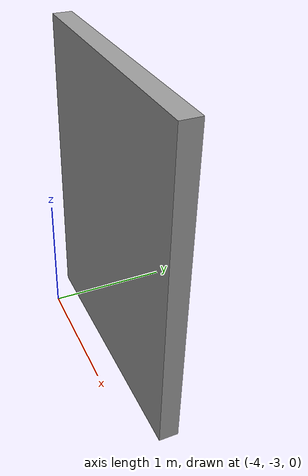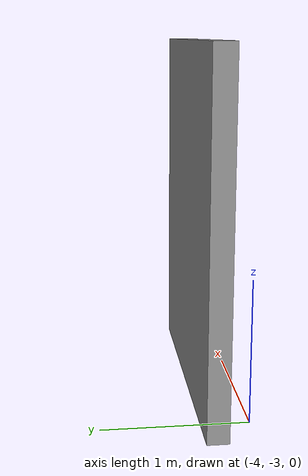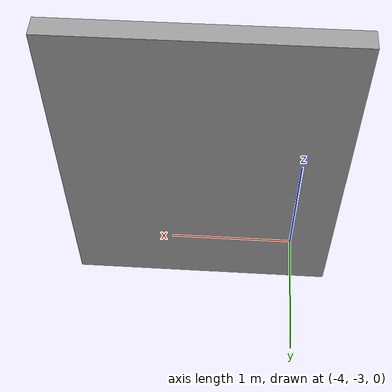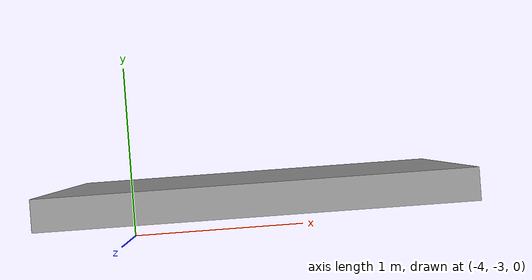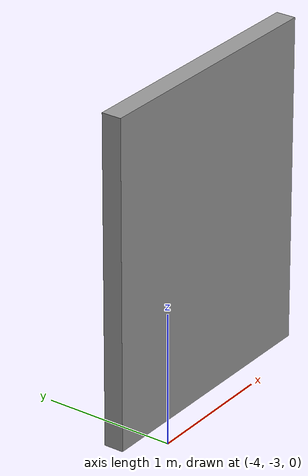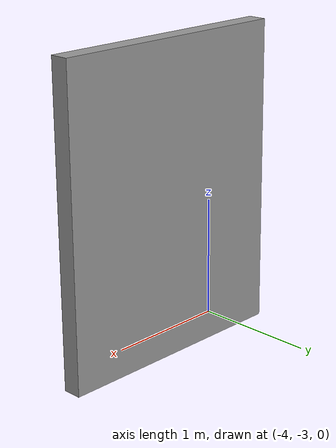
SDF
<?xml version='1.0'?>
<sdf version='1.6'>
  <model name='test'>
    <pose frame=''>-3.265 -2.74 0 0 -0 0</pose>
    <link name='Wall_0'>
      <collision name='Wall_0_Collision'>
        <geometry>
          <box>
            <size>2 0.15 2.5</size>
          </box>
        </geometry>
        <pose frame=''>0 0 1.25 0 -0 0</pose>
      </collision>
      <visual name='Wall_0_Visual'>
        <pose frame=''>0 0 1.25 0 -0 0</pose>
        <geometry>
          <box>
            <size>2 0.15 2.5</size>
          </box>
        </geometry>
        <material>
          <script>
            <uri>file://media/materials/scripts/gazebo.material</uri>
            <name>Gazebo/Grey</name>
          </script>
          <ambient>1 1 1 1</ambient>
        </material>
      </visual>
      <pose frame=''>0 0 0 0 -0 0</pose>
    </link>
    <static>1</static>
  </model>
</sdf>
